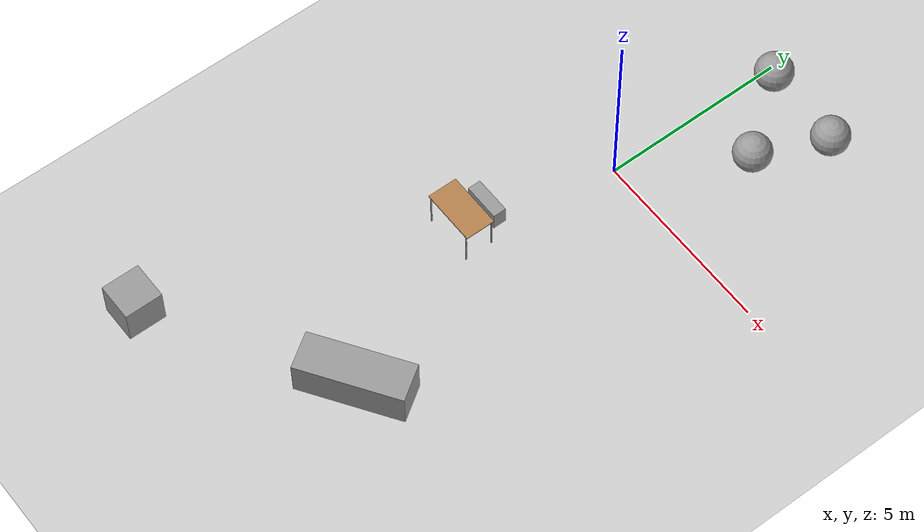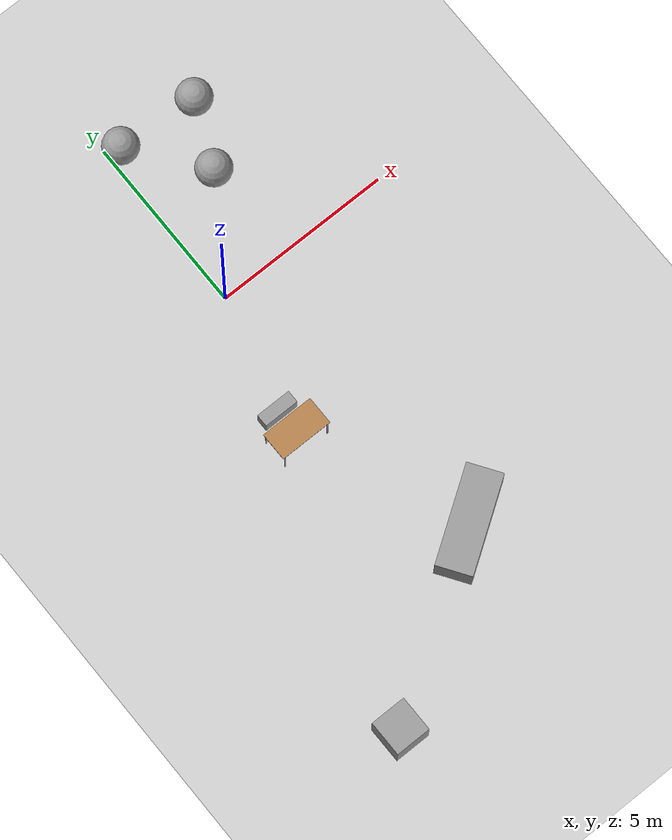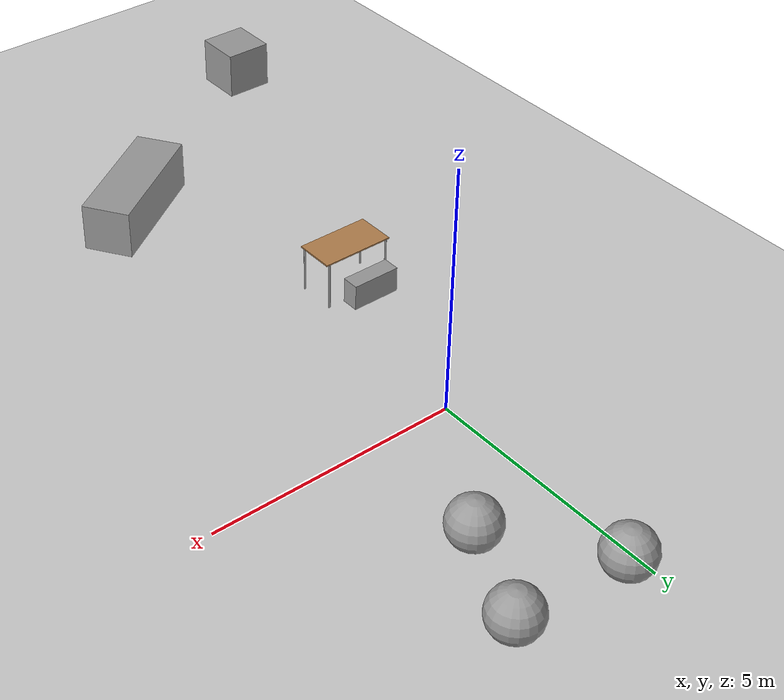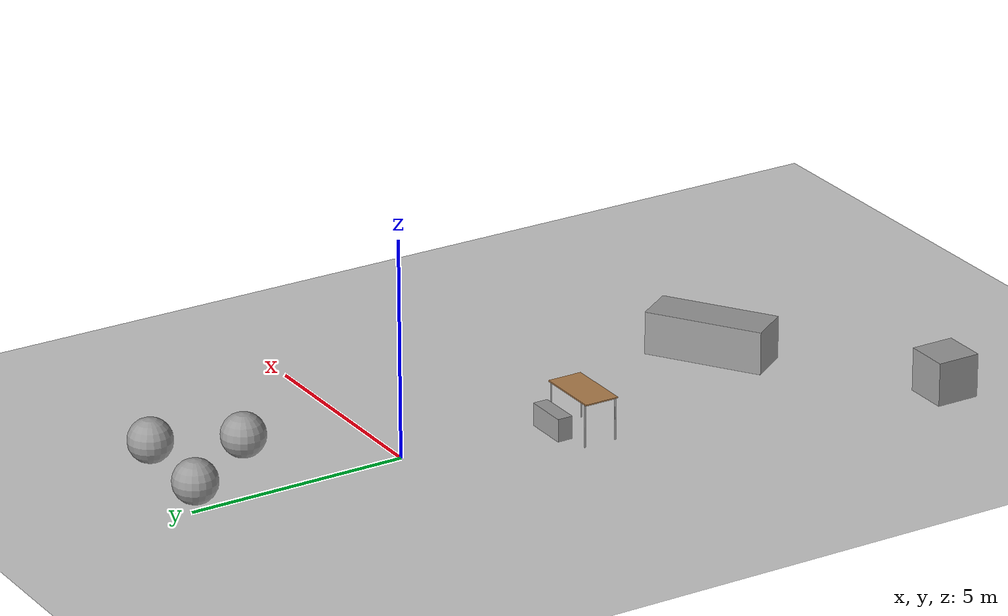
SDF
<sdf version="1.6">
 <world name="default">
  <light name="sun" type="directional">
   <pose>0 0 10 0 -0 0</pose>
   <diffuse>0.8 0.8 0.8 1</diffuse>
   <specular>0.2 0.2 0.2 1</specular>
   <attenuation>
    <range>1000</range>
    <constant>0.9</constant>
    <linear>0.01</linear>
    <quadratic>0.001</quadratic>
   </attenuation>
   <direction>-0.5 0.1 -0.9</direction>
  </light>
  <model name="ground_plane">
   <static>1</static>
   <link name="link">
    <collision name="collision">
     <geometry><plane><normal>0 0 1</normal><size>100 100</size></plane></geometry>
     <surface><friction><ode><mu>100</mu><mu2>50</mu2></ode></friction></surface>
    </collision>
    <visual name="visual">
     <cast_shadows>0</cast_shadows>
     <geometry><plane><normal>0 0 1</normal><size>100 100</size></plane></geometry>
     <material>
      <script><uri>file://media/materials/scripts/gazebo.material</uri><name>Gazebo/Grey</name></script>
     </material>
    </visual>
   </link>
  </model>
  <gravity>0 0 -9.8</gravity>
  <magnetic_field>6e-06 2.3e-05 -4.2e-05</magnetic_field>
  <atmosphere type="adiabatic"/>
  <physics name="default_physics" default="0" type="ode">
   <max_step_size>0.001</max_step_size>
   <real_time_factor>1</real_time_factor>
   <real_time_update_rate>1000</real_time_update_rate>
  </physics>
  <scene><ambient>0.4 0.4 0.4 1</ambient><background>0.7 0.7 0.7 1</background><shadows>1</shadows></scene>
  <spherical_coordinates>
   <surface_model>EARTH_WGS84</surface_model>
   <latitude_deg>0</latitude_deg>
   <longitude_deg>0</longitude_deg>
   <elevation>0</elevation>
   <heading_deg>0</heading_deg>
  </spherical_coordinates>
  <model name="table">
   <static>1</static>
   <link name="link">
    <collision name="surface">
     <pose>0 0 1 0 -0 0</pose>
     <geometry><box><size>1.5 0.8 0.03</size></box></geometry>
     <surface><friction><ode><mu>0.6</mu><mu2>0.6</mu2></ode></friction></surface>
    </collision>
    <visual name="visual1">
     <pose>0 0 1 0 -0 0</pose>
     <geometry><box><size>1.5 0.8 0.03</size></box></geometry>
     <material>
      <script><uri>file://media/materials/scripts/gazebo.material</uri><name>Gazebo/Wood</name></script>
     </material>
    </visual>
    <collision name="front_left_leg">
     <pose>0.68 0.38 0.5 0 -0 0</pose>
     <geometry><cylinder><radius>0.02</radius><length>1</length></cylinder></geometry>
    </collision>
    <visual name="front_left_leg">
     <pose>0.68 0.38 0.5 0 -0 0</pose>
     <geometry><cylinder><radius>0.02</radius><length>1</length></cylinder></geometry>
     <material>
      <script><uri>file://media/materials/scripts/gazebo.material</uri><name>Gazebo/Grey</name></script>
     </material>
    </visual>
    <collision name="front_right_leg">
     <pose>0.68 -0.38 0.5 0 -0 0</pose>
     <geometry><cylinder><radius>0.02</radius><length>1</length></cylinder></geometry>
    </collision>
    <visual name="front_right_leg">
     <pose>0.68 -0.38 0.5 0 -0 0</pose>
     <geometry><cylinder><radius>0.02</radius><length>1</length></cylinder></geometry>
     <material>
      <script><uri>file://media/materials/scripts/gazebo.material</uri><name>Gazebo/Grey</name></script>
     </material>
    </visual>
    <collision name="back_right_leg">
     <pose>-0.68 -0.38 0.5 0 -0 0</pose>
     <geometry><cylinder><radius>0.02</radius><length>1</length></cylinder></geometry>
    </collision>
    <visual name="back_right_leg">
     <pose>-0.68 -0.38 0.5 0 -0 0</pose>
     <geometry><cylinder><radius>0.02</radius><length>1</length></cylinder></geometry>
     <material>
      <script><uri>file://media/materials/scripts/gazebo.material</uri><name>Gazebo/Grey</name></script>
     </material>
    </visual>
    <collision name="back_left_leg">
     <pose>-0.68 0.38 0.5 0 -0 0</pose>
     <geometry><cylinder><radius>0.02</radius><length>1</length></cylinder></geometry>
    </collision>
    <visual name="back_left_leg">
     <pose>-0.68 0.38 0.5 0 -0 0</pose>
     <geometry><cylinder><radius>0.02</radius><length>1</length></cylinder></geometry>
     <material>
      <script><uri>file://media/materials/scripts/gazebo.material</uri><name>Gazebo/Grey</name></script>
     </material>
    </visual>
   </link>
   <pose>-0.884 -3.96889 0 0 -0 0</pose>
  </model>
  <model name="unit_box">
   <pose>-0.890461 -3.20356 0.452729 0 -0 0</pose>
   <link name="link">
    <inertial>
     <mass>1</mass>
     <inertia>
      <ixx>0.166667</ixx>
      <ixy>0</ixy>
      <ixz>0</ixz>
      <iyy>0.166667</iyy>
      <iyz>0</iyz>
      <izz>0.166667</izz>
     </inertia>
    </inertial>
    <collision name="collision"><geometry><box><size>1 0.350373 0.525857</size></box></geometry></collision>
    <visual name="visual">
     <geometry><box><size>1 0.350373 0.525857</size></box></geometry>
     <material>
      <script><name>Gazebo/Grey</name><uri>file://media/materials/scripts/gazebo.material</uri></script>
     </material>
    </visual>
   </link>
  </model>
  <model name="unit_box_0">
   <pose>-3.63873 -11.4262 0.6898 0 -0 0</pose>
   <link name="link">
    <inertial>
     <mass>1</mass>
     <inertia>
      <ixx>0.166667</ixx>
      <ixy>0</ixy>
      <ixz>0</ixz>
      <iyy>0.166667</iyy>
      <iyz>0</iyz>
      <izz>0.166667</izz>
     </inertia>
    </inertial>
    <collision name="collision"><geometry><box><size>1 1 1</size></box></geometry></collision>
    <visual name="visual">
     <geometry><box><size>1 1 1</size></box></geometry>
     <material>
      <script><name>Gazebo/Grey</name><uri>file://media/materials/scripts/gazebo.material</uri></script>
     </material>
    </visual>
   </link>
  </model>
  <model name="unit_box_1">
   <pose>1.00509 -8.46115 0.5 0 -0 0.591363</pose>
   <link name="link">
    <inertial>
     <mass>1</mass>
     <inertia>
      <ixx>0.166667</ixx>
      <ixy>0</ixy>
      <ixz>0</ixz>
      <iyy>0.166667</iyy>
      <iyz>0</iyz>
      <izz>0.166667</izz>
     </inertia>
    </inertial>
    <collision name="collision"><geometry><box><size>2.75028 1 1</size></box></geometry></collision>
    <visual name="visual">
     <geometry><box><size>2.75028 1 1</size></box></geometry>
     <material>
      <script><name>Gazebo/Grey</name><uri>file://media/materials/scripts/gazebo.material</uri></script>
     </material>
    </visual>
   </link>
  </model>
  <model name="unit_sphere">
   <pose>1.84803 2.76876 0.5 0 -0 0</pose>
   <link name="link">
    <inertial>
     <mass>1</mass>
     <inertia><ixx>0.1</ixx><ixy>0</ixy><ixz>0</ixz><iyy>0.1</iyy><iyz>0</iyz><izz>0.1</izz></inertia>
    </inertial>
    <collision name="collision"><geometry><sphere><radius>0.5</radius></sphere></geometry></collision>
    <visual name="visual">
     <geometry><sphere><radius>0.5</radius></sphere></geometry>
     <material>
      <script><name>Gazebo/Grey</name><uri>file://media/materials/scripts/gazebo.material</uri></script>
     </material>
    </visual>
   </link>
  </model>
  <model name="unit_sphere_0">
   <pose>0.368736 4.72108 0.5 0 -0 0</pose>
   <link name="link">
    <inertial>
     <mass>1</mass>
     <inertia><ixx>0.1</ixx><ixy>0</ixy><ixz>0</ixz><iyy>0.1</iyy><iyz>0</iyz><izz>0.1</izz></inertia>
    </inertial>
    <collision name="collision"><geometry><sphere><radius>0.5</radius></sphere></geometry></collision>
    <visual name="visual">
     <geometry><sphere><radius>0.5</radius></sphere></geometry>
     <material>
      <script><name>Gazebo/Grey</name><uri>file://media/materials/scripts/gazebo.material</uri></script>
     </material>
    </visual>
   </link>
  </model>
  <model name="unit_sphere_1">
   <pose>2.63981 4.56634 0.5 0 -0 0</pose>
   <link name="link">
    <inertial>
     <mass>1</mass>
     <inertia><ixx>0.1</ixx><ixy>0</ixy><ixz>0</ixz><iyy>0.1</iyy><iyz>0</iyz><izz>0.1</izz></inertia>
    </inertial>
    <collision name="collision"><geometry><sphere><radius>0.5</radius></sphere></geometry></collision>
    <visual name="visual">
     <geometry><sphere><radius>0.5</radius></sphere></geometry>
     <material>
      <script><name>Gazebo/Grey</name><uri>file://media/materials/scripts/gazebo.material</uri></script>
     </material>
    </visual>
   </link>
  </model>
 </world>
</sdf>
